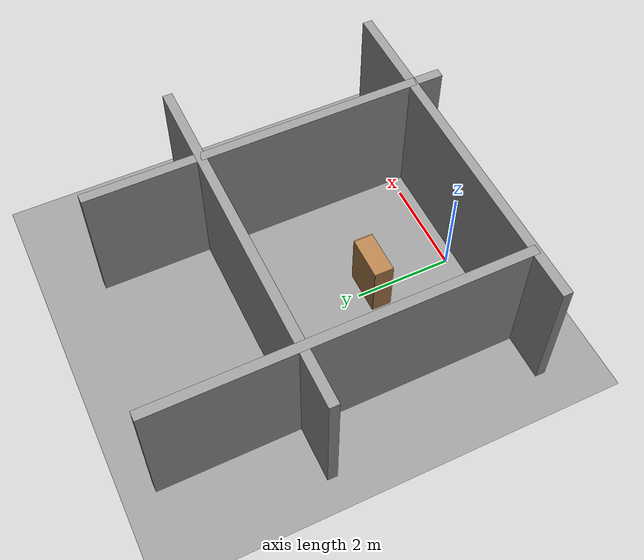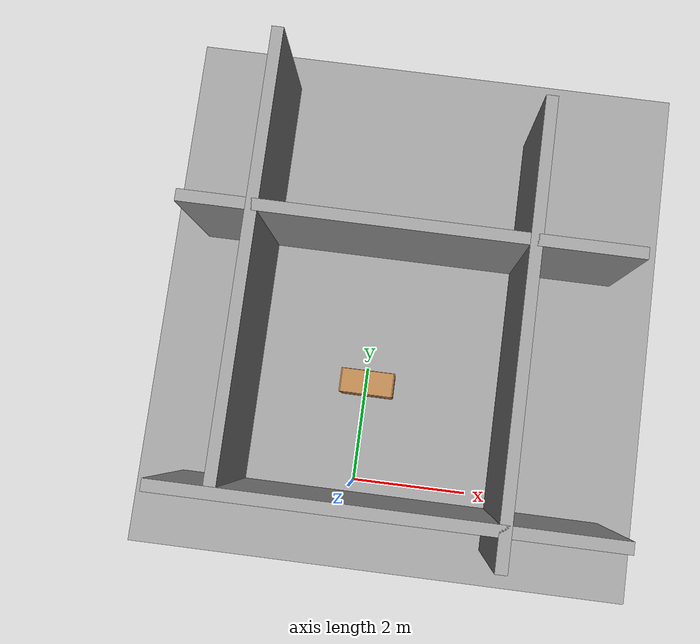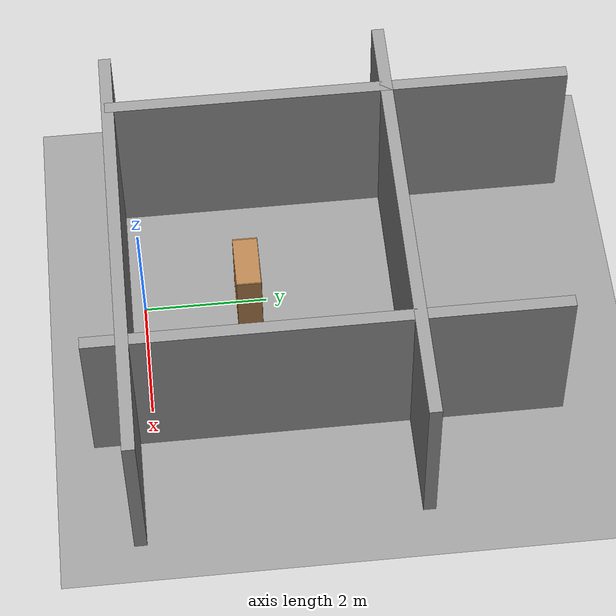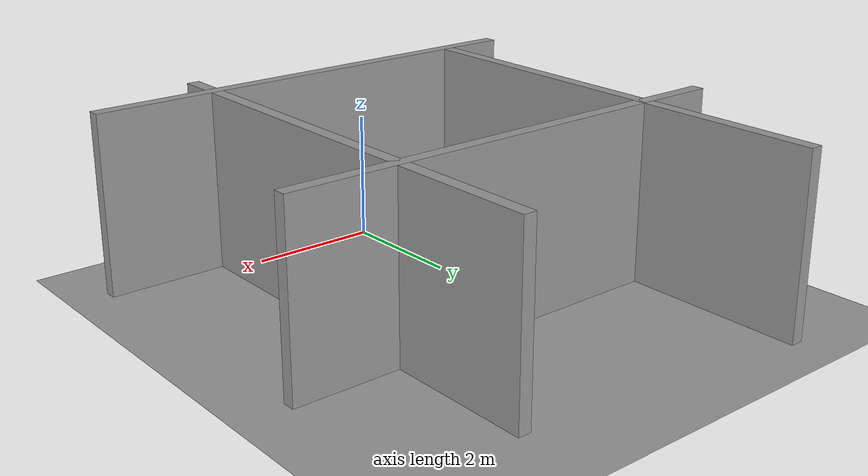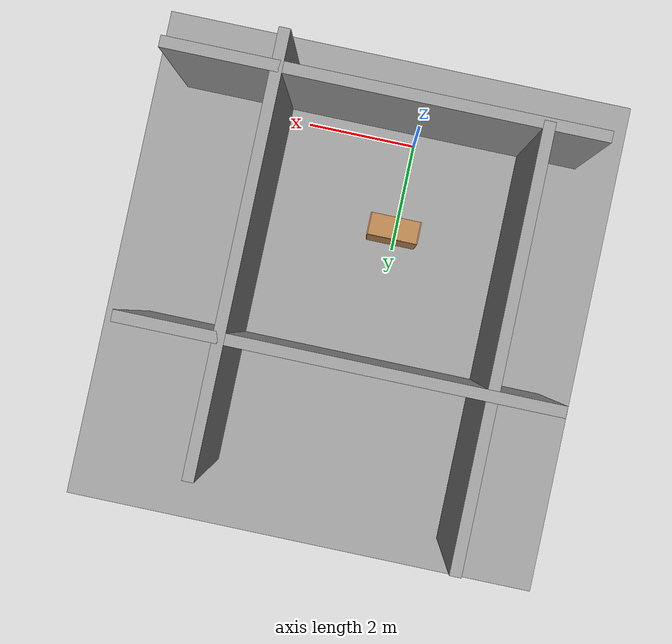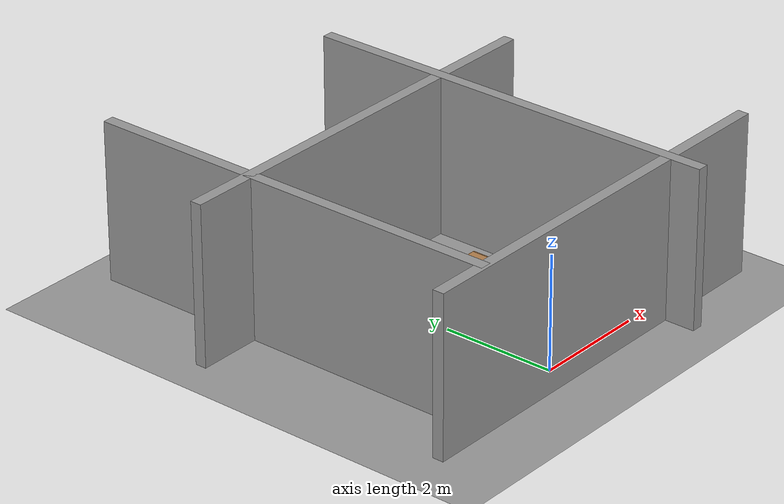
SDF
<sdf version="1.6">
 <world name="default">
  <light name="sun" type="directional">
   <pose>0 0 10 0 -0 0</pose>
   <diffuse>0.8 0.8 0.8 1</diffuse>
   <specular>0.2 0.2 0.2 1</specular>
   <attenuation>
    <range>1000</range>
    <constant>0.9</constant>
    <linear>0.01</linear>
    <quadratic>0.001</quadratic>
   </attenuation>
   <direction>0.5 0.1 -0.9</direction>
  </light>
  <scene><ambient>0.4 0.4 0.4 1</ambient><background>0.7 0.7 0.7 1</background><shadows>1</shadows></scene>
  <physics name="default_physics" default="0" type="ode">
   <max_step_size>0.01</max_step_size>
   <real_time_factor>1</real_time_factor>
   <real_time_update_rate>100</real_time_update_rate>
  </physics>
  <model name="ground_plane_0">
   <static>1</static>
   <link name="link">
    <collision name="collision">
     <geometry><plane><normal>0 0 1</normal><size>100 100</size></plane></geometry>
     <surface><friction><ode><mu>100</mu><mu2>50</mu2></ode></friction></surface>
    </collision>
    <visual name="visual">
     <cast_shadows>0</cast_shadows>
     <geometry><plane><normal>0 0 1</normal><size>100 100</size></plane></geometry>
     <material>
      <script><uri>file://media/materials/scripts/gazebo.material</uri><name>Gazebo/Grey</name></script>
     </material>
    </visual>
    <velocity_decay><linear>0</linear><angular>0</angular></velocity_decay>
   </link>
   <pose>0.497681 0 0 0 -0 0</pose>
  </model>
  <gravity>0 0 -9.8</gravity>
  <magnetic_field>6e-06 2.3e-05 -4.2e-05</magnetic_field>
  <atmosphere type="adiabatic"/>
  <spherical_coordinates>
   <surface_model>EARTH_WGS84</surface_model>
   <latitude_deg>0</latitude_deg>
   <longitude_deg>0</longitude_deg>
   <elevation>0</elevation>
   <heading_deg>0</heading_deg>
  </spherical_coordinates>
  <model name="grey_wall">
   <static>1</static>
   <link name="link">
    <pose>0 0 1.4 0 -0 0</pose>
    <collision name="collision"><geometry><box><size>7.5 0.2 2.8</size></box></geometry></collision>
    <visual name="visual">
     <cast_shadows>0</cast_shadows>
     <geometry><box><size>7.5 0.2 2.8</size></box></geometry>
     <material>
      <script>
       <uri>model://grey_wall/materials/scripts</uri>
       <uri>model://grey_wall/materials/textures</uri>
       <name>vrc/grey_wall</name>
      </script>
     </material>
    </visual>
   </link>
   <pose>0.674025 -0.323631 0 0 -0 0</pose>
  </model>
  <model name="grey_wall_clone">
   <static>1</static>
   <link name="link">
    <pose>0 0 1.4 0 -0 0</pose>
    <collision name="collision"><geometry><box><size>7.5 0.2 2.8</size></box></geometry></collision>
    <visual name="visual">
     <cast_shadows>0</cast_shadows>
     <geometry><box><size>7.5 0.2 2.8</size></box></geometry>
     <material>
      <script>
       <uri>model://grey_wall/materials/scripts</uri>
       <uri>model://grey_wall/materials/textures</uri>
       <name>vrc/grey_wall</name>
      </script>
     </material>
    </visual>
   </link>
   <pose>-2.04623 3.38172 0 0 -0 1.57208</pose>
  </model>
  <model name="bookshelf_0">
   <static>1</static>
   <link name="link">
    <inertial><mass>1</mass></inertial>
    <collision name="back">
     <pose>0 0.005 0.6 0 -0 0</pose>
     <geometry><box><size>0.9 0.01 1.2</size></box></geometry>
    </collision>
    <visual name="visual1">
     <pose>0 0.005 0.6 0 -0 0</pose>
     <geometry><box><size>0.9 0.01 1.2</size></box></geometry>
     <material>
      <script><uri>file://media/materials/scripts/gazebo.material</uri><name>Gazebo/Wood</name></script>
     </material>
    </visual>
    <collision name="left_side">
     <pose>0.45 -0.195 0.6 0 -0 0</pose>
     <geometry><box><size>0.02 0.4 1.2</size></box></geometry>
    </collision>
    <visual name="visual2">
     <pose>0.45 -0.195 0.6 0 -0 0</pose>
     <geometry><box><size>0.02 0.4 1.2</size></box></geometry>
     <material>
      <script><uri>file://media/materials/scripts/gazebo.material</uri><name>Gazebo/Wood</name></script>
     </material>
    </visual>
    <collision name="right_side">
     <pose>-0.45 -0.195 0.6 0 -0 0</pose>
     <geometry><box><size>0.02 0.4 1.2</size></box></geometry>
    </collision>
    <visual name="visual3">
     <pose>-0.45 -0.195 0.6 0 -0 0</pose>
     <geometry><box><size>0.02 0.4 1.2</size></box></geometry>
     <material>
      <script><uri>file://media/materials/scripts/gazebo.material</uri><name>Gazebo/Wood</name></script>
     </material>
    </visual>
    <collision name="bottom">
     <pose>0 -0.195 0.03 0 -0 0</pose>
     <geometry><box><size>0.88 0.4 0.06</size></box></geometry>
    </collision>
    <visual name="visual4">
     <pose>0 -0.195 0.03 0 -0 0</pose>
     <geometry><box><size>0.88 0.4 0.06</size></box></geometry>
     <material>
      <script><uri>file://media/materials/scripts/gazebo.material</uri><name>Gazebo/Wood</name></script>
     </material>
    </visual>
    <collision name="top">
     <pose>0 -0.195 1.19 0 -0 0</pose>
     <geometry><box><size>0.88 0.4 0.02</size></box></geometry>
    </collision>
    <visual name="visual5">
     <pose>0 -0.195 1.19 0 -0 0</pose>
     <geometry><box><size>0.88 0.4 0.02</size></box></geometry>
     <material>
      <script><uri>file://media/materials/scripts/gazebo.material</uri><name>Gazebo/Wood</name></script>
     </material>
    </visual>
    <collision name="low_shelf">
     <pose>0 -0.195 0.43 0 -0 0</pose>
     <geometry><box><size>0.88 0.4 0.02</size></box></geometry>
    </collision>
    <visual name="visual6">
     <pose>0 -0.195 0.43 0 -0 0</pose>
     <geometry><box><size>0.88 0.4 0.02</size></box></geometry>
     <material>
      <script><uri>file://media/materials/scripts/gazebo.material</uri><name>Gazebo/Wood</name></script>
     </material>
    </visual>
    <collision name="high_shelf">
     <pose>0 -0.195 0.8 0 -0 0</pose>
     <geometry><box><size>0.88 0.4 0.02</size></box></geometry>
    </collision>
    <visual name="visual7">
     <pose>0 -0.195 0.8 0 -0 0</pose>
     <geometry><box><size>0.88 0.4 0.02</size></box></geometry>
     <material>
      <script><uri>file://media/materials/scripts/gazebo.material</uri><name>Gazebo/Wood</name></script>
     </material>
    </visual>
   </link>
   <pose>0.056181 1.8965 0 0 -0 0</pose>
  </model>
  <model name="grey_wall_clone_clone">
   <static>1</static>
   <link name="link">
    <pose>0 0 1.4 0 -0 0</pose>
    <collision name="collision"><geometry><box><size>7.5 0.2 2.8</size></box></geometry></collision>
    <visual name="visual">
     <cast_shadows>0</cast_shadows>
     <geometry><box><size>7.5 0.2 2.8</size></box></geometry>
     <material>
      <script>
       <uri>model://grey_wall/materials/scripts</uri>
       <uri>model://grey_wall/materials/textures</uri>
       <name>vrc/grey_wall</name>
      </script>
     </material>
    </visual>
   </link>
   <pose>2.47642 2.79164 0 0 -0 1.57208</pose>
  </model>
  <model name="grey_wall_clone_0">
   <static>1</static>
   <link name="link">
    <pose>0 0 1.4 0 -0 0</pose>
    <collision name="collision"><geometry><box><size>7.5 0.2 2.8</size></box></geometry></collision>
    <visual name="visual">
     <cast_shadows>0</cast_shadows>
     <geometry><box><size>7.5 0.2 2.8</size></box></geometry>
     <material>
      <script>
       <uri>model://grey_wall/materials/scripts</uri>
       <uri>model://grey_wall/materials/textures</uri>
       <name>vrc/grey_wall</name>
      </script>
     </material>
    </visual>
   </link>
   <pose>0.487141 4.18039 0 0 -0 0</pose>
  </model>
 </world>
</sdf>
